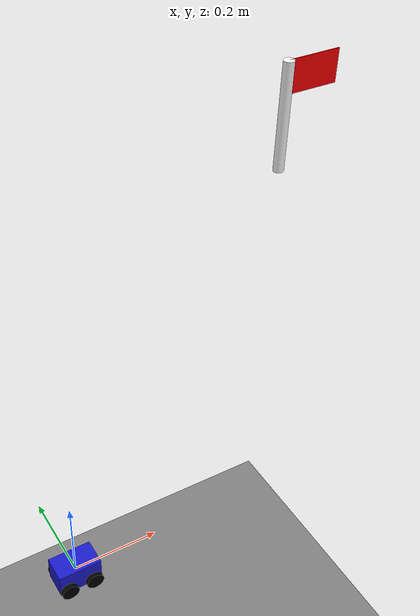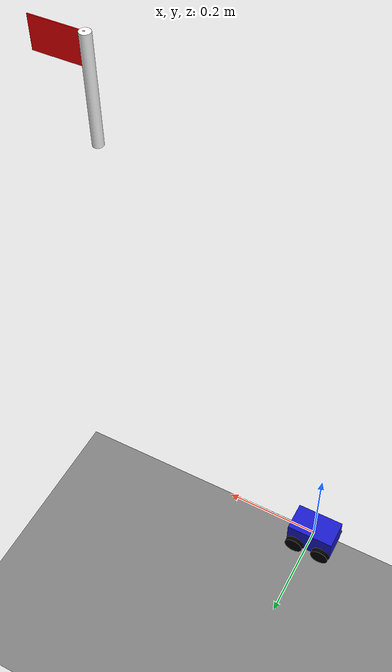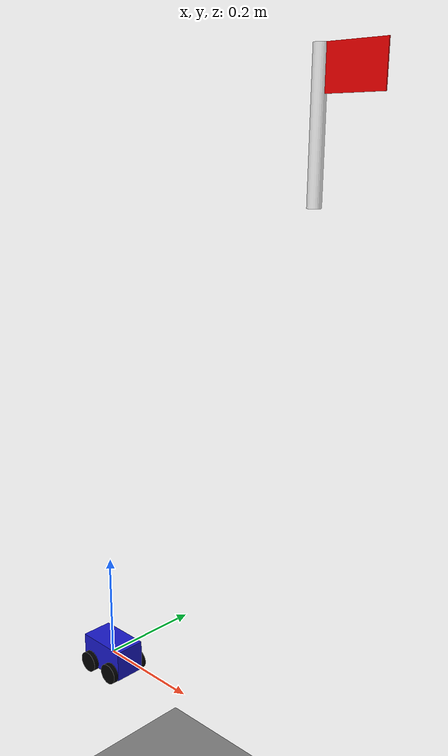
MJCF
<mujoco>
    <compiler angle="radian"/>
    <worldbody>
        <light diffuse=".5 .5 .5" pos="0 0 3" dir="0 0 -1"/>
        <light diffuse=".5 .5 .5" pos="0 0 3" dir="0 0 1"/>

        <!-- The track/hill -->
        <!-- We use a high-resolution mesh-like approach with boxes -->
        <!-- These are generated to follow y = sin(3*x) -->
        <body name="track" pos="0 0 0">
            <!-- The track geoms will be inserted here or generated dynamically -->
            <geom name="floor" type="plane" size="2 2 0.01" pos="0 0 -0.5" rgba="0.5 0.5 0.5 1"/>
        </body>

        <!-- Goal flag -->
        <body pos="0.45 0 0.97">
            <geom type="cylinder" size="0.01 0.1" rgba="1 1 1 1"/>
            <geom type="box" size="0.05 0.001 0.03" pos="0.05 0 0.07" rgba="1 0 0 1"/>
        </body>

        <!-- The car -->
        <body name="car" pos="0 0 0">
            <joint name="car_joint" type="free"/>
            <geom type="box" size="0.05 0.03 0.03" rgba="0.1 0.1 0.8 1"/>
            <!-- Wheels -->
            <geom type="cylinder" size="0.02 0.01" pos="0.03 0.03 -0.02" euler="1.5708 0 0" rgba="0 0 0 1"/>
            <geom type="cylinder" size="0.02 0.01" pos="-0.03 0.03 -0.02" euler="1.5708 0 0" rgba="0 0 0 1"/>
            <geom type="cylinder" size="0.02 0.01" pos="0.03 -0.03 -0.02" euler="1.5708 0 0" rgba="0 0 0 1"/>
            <geom type="cylinder" size="0.02 0.01" pos="-0.03 -0.03 -0.02" euler="1.5708 0 0" rgba="0 0 0 1"/>
        </body>
    </worldbody>
</mujoco>
